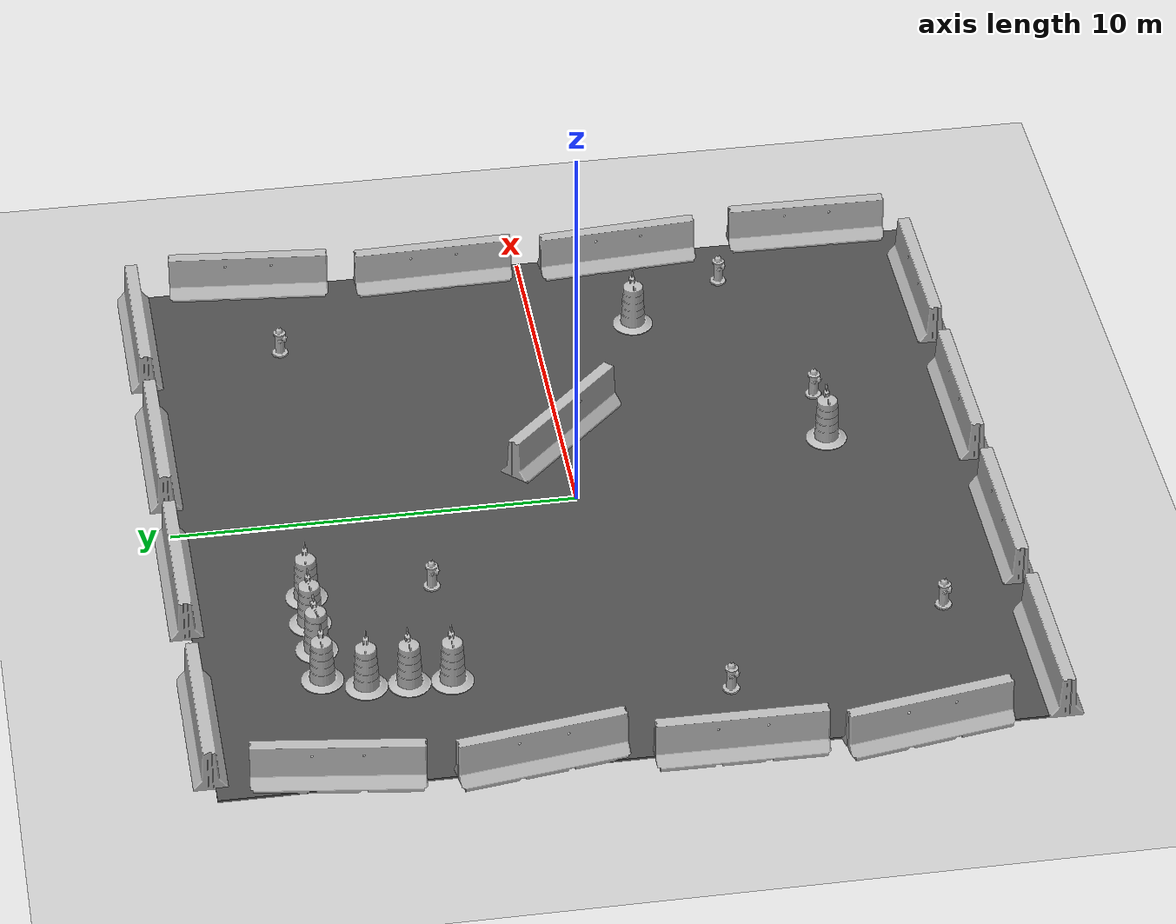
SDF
<sdf version="1.6">
 <world name="default">
  <light name="sun" type="directional">
   <pose>0 0 10 0 -0 0</pose>
   <diffuse>0.8 0.8 0.8 1</diffuse>
   <specular>0.2 0.2 0.2 1</specular>
   <attenuation>
    <range>1000</range>
    <constant>0.9</constant>
    <linear>0.01</linear>
    <quadratic>0.001</quadratic>
   </attenuation>
   <direction>-0.5 0.1 -0.9</direction>
  </light>
  <model name="ground_plane">
   <static>1</static>
   <link name="link">
    <collision name="collision">
     <geometry><plane><normal>0 0 1</normal><size>100 100</size></plane></geometry>
     <surface><friction><ode><mu>100</mu><mu2>50</mu2></ode></friction></surface>
    </collision>
    <visual name="visual">
     <cast_shadows>0</cast_shadows>
     <geometry><plane><normal>0 0 1</normal><size>100 100</size></plane></geometry>
     <material>
      <script><uri>file://media/materials/scripts/gazebo.material</uri><name>Gazebo/Grey</name></script>
     </material>
    </visual>
    <velocity_decay><linear>0</linear><angular>0</angular></velocity_decay>
   </link>
  </model>
  <physics type="ode">
   <max_step_size>0.01</max_step_size>
   <real_time_factor>1</real_time_factor>
   <real_time_update_rate>100</real_time_update_rate>
   <gravity>0 0 -9.8</gravity>
  </physics>
  <scene><ambient>0.4 0.4 0.4 1</ambient><background>0.7 0.7 0.7 1</background><shadows>1</shadows></scene>
  <model name="jersey_barrier">
   <static>1</static>
   <link name="link">
    <visual name="visual">
     <geometry>
      <mesh><uri>model://jersey_barrier/meshes/jersey_barrier.dae</uri><scale>1 1 1</scale></mesh>
     </geometry>
    </visual>
    <collision name="upright">
     <pose>0 0 0.5715 0 -0 0</pose>
     <geometry><box><size>4.06542 0.3063 1.143</size></box></geometry>
    </collision>
    <collision name="base">
     <pose>0 0 0.032258 0 -0 0</pose>
     <geometry><box><size>4.06542 0.8107 0.064516</size></box></geometry>
    </collision>
    <collision name="base2">
     <pose>0 0 0.1 0 -0 0</pose>
     <geometry><box><size>4.06542 0.65 0.1</size></box></geometry>
    </collision>
    <collision name="base3">
     <pose>0 0 0.2 0 -0 0</pose>
     <geometry><box><size>4.06542 0.5 0.1</size></box></geometry>
    </collision>
    <collision name="left-angle">
     <pose>0 -0.224 0.2401 0.9 -0 0</pose>
     <geometry><box><size>4.06542 0.5 0.064516</size></box></geometry>
    </collision>
    <collision name="right-angle">
     <pose>0 0.224 0.2401 -0.9 0 0</pose>
     <geometry><box><size>4.06542 0.5 0.064516</size></box></geometry>
    </collision>
    <velocity_decay><linear>0</linear><angular>0</angular></velocity_decay>
   </link>
   <pose>-8 -10 0 0 -0 0</pose>
  </model>
  <model name="jersey_barrier_0">
   <static>1</static>
   <link name="link">
    <visual name="visual">
     <geometry>
      <mesh><uri>model://jersey_barrier/meshes/jersey_barrier.dae</uri><scale>1 1 1</scale></mesh>
     </geometry>
    </visual>
    <collision name="upright">
     <pose>0 0 0.5715 0 -0 0</pose>
     <geometry><box><size>4.06542 0.3063 1.143</size></box></geometry>
    </collision>
    <collision name="base">
     <pose>0 0 0.032258 0 -0 0</pose>
     <geometry><box><size>4.06542 0.8107 0.064516</size></box></geometry>
    </collision>
    <collision name="base2">
     <pose>0 0 0.1 0 -0 0</pose>
     <geometry><box><size>4.06542 0.65 0.1</size></box></geometry>
    </collision>
    <collision name="base3">
     <pose>0 0 0.2 0 -0 0</pose>
     <geometry><box><size>4.06542 0.5 0.1</size></box></geometry>
    </collision>
    <collision name="left-angle">
     <pose>0 -0.224 0.2401 0.9 -0 0</pose>
     <geometry><box><size>4.06542 0.5 0.064516</size></box></geometry>
    </collision>
    <collision name="right-angle">
     <pose>0 0.224 0.2401 -0.9 0 0</pose>
     <geometry><box><size>4.06542 0.5 0.064516</size></box></geometry>
    </collision>
    <velocity_decay><linear>0</linear><angular>0</angular></velocity_decay>
   </link>
   <pose>-3 -10 0 0 -0 0</pose>
  </model>
  <model name="jersey_barrier_1">
   <static>1</static>
   <link name="link">
    <visual name="visual">
     <geometry>
      <mesh><uri>model://jersey_barrier/meshes/jersey_barrier.dae</uri><scale>1 1 1</scale></mesh>
     </geometry>
    </visual>
    <collision name="upright">
     <pose>0 0 0.5715 0 -0 0</pose>
     <geometry><box><size>4.06542 0.3063 1.143</size></box></geometry>
    </collision>
    <collision name="base">
     <pose>0 0 0.032258 0 -0 0</pose>
     <geometry><box><size>4.06542 0.8107 0.064516</size></box></geometry>
    </collision>
    <collision name="base2">
     <pose>0 0 0.1 0 -0 0</pose>
     <geometry><box><size>4.06542 0.65 0.1</size></box></geometry>
    </collision>
    <collision name="base3">
     <pose>0 0 0.2 0 -0 0</pose>
     <geometry><box><size>4.06542 0.5 0.1</size></box></geometry>
    </collision>
    <collision name="left-angle">
     <pose>0 -0.224 0.2401 0.9 -0 0</pose>
     <geometry><box><size>4.06542 0.5 0.064516</size></box></geometry>
    </collision>
    <collision name="right-angle">
     <pose>0 0.224 0.2401 -0.9 0 0</pose>
     <geometry><box><size>4.06542 0.5 0.064516</size></box></geometry>
    </collision>
    <velocity_decay><linear>0</linear><angular>0</angular></velocity_decay>
   </link>
   <pose>2 -10 0 0 -0 0</pose>
  </model>
  <model name="jersey_barrier_2">
   <static>1</static>
   <link name="link">
    <visual name="visual">
     <geometry>
      <mesh><uri>model://jersey_barrier/meshes/jersey_barrier.dae</uri><scale>1 1 1</scale></mesh>
     </geometry>
    </visual>
    <collision name="upright">
     <pose>0 0 0.5715 0 -0 0</pose>
     <geometry><box><size>4.06542 0.3063 1.143</size></box></geometry>
    </collision>
    <collision name="base">
     <pose>0 0 0.032258 0 -0 0</pose>
     <geometry><box><size>4.06542 0.8107 0.064516</size></box></geometry>
    </collision>
    <collision name="base2">
     <pose>0 0 0.1 0 -0 0</pose>
     <geometry><box><size>4.06542 0.65 0.1</size></box></geometry>
    </collision>
    <collision name="base3">
     <pose>0 0 0.2 0 -0 0</pose>
     <geometry><box><size>4.06542 0.5 0.1</size></box></geometry>
    </collision>
    <collision name="left-angle">
     <pose>0 -0.224 0.2401 0.9 -0 0</pose>
     <geometry><box><size>4.06542 0.5 0.064516</size></box></geometry>
    </collision>
    <collision name="right-angle">
     <pose>0 0.224 0.2401 -0.9 0 0</pose>
     <geometry><box><size>4.06542 0.5 0.064516</size></box></geometry>
    </collision>
    <velocity_decay><linear>0</linear><angular>0</angular></velocity_decay>
   </link>
   <pose>7 -10 0 0 -0 0</pose>
  </model>
  <model name="jersey_barrier_3">
   <static>1</static>
   <link name="link">
    <visual name="visual">
     <geometry>
      <mesh><uri>model://jersey_barrier/meshes/jersey_barrier.dae</uri><scale>1 1 1</scale></mesh>
     </geometry>
    </visual>
    <collision name="upright">
     <pose>0 0 0.5715 0 -0 0</pose>
     <geometry><box><size>4.06542 0.3063 1.143</size></box></geometry>
    </collision>
    <collision name="base">
     <pose>0 0 0.032258 0 -0 0</pose>
     <geometry><box><size>4.06542 0.8107 0.064516</size></box></geometry>
    </collision>
    <collision name="base2">
     <pose>0 0 0.1 0 -0 0</pose>
     <geometry><box><size>4.06542 0.65 0.1</size></box></geometry>
    </collision>
    <collision name="base3">
     <pose>0 0 0.2 0 -0 0</pose>
     <geometry><box><size>4.06542 0.5 0.1</size></box></geometry>
    </collision>
    <collision name="left-angle">
     <pose>0 -0.224 0.2401 0.9 -0 0</pose>
     <geometry><box><size>4.06542 0.5 0.064516</size></box></geometry>
    </collision>
    <collision name="right-angle">
     <pose>0 0.224 0.2401 -0.9 0 0</pose>
     <geometry><box><size>4.06542 0.5 0.064516</size></box></geometry>
    </collision>
    <velocity_decay><linear>0</linear><angular>0</angular></velocity_decay>
   </link>
   <pose>-7.50675 10 0 0 -0 0</pose>
  </model>
  <model name="jersey_barrier_4">
   <static>1</static>
   <link name="link">
    <visual name="visual">
     <geometry>
      <mesh><uri>model://jersey_barrier/meshes/jersey_barrier.dae</uri><scale>1 1 1</scale></mesh>
     </geometry>
    </visual>
    <collision name="upright">
     <pose>0 0 0.5715 0 -0 0</pose>
     <geometry><box><size>4.06542 0.3063 1.143</size></box></geometry>
    </collision>
    <collision name="base">
     <pose>0 0 0.032258 0 -0 0</pose>
     <geometry><box><size>4.06542 0.8107 0.064516</size></box></geometry>
    </collision>
    <collision name="base2">
     <pose>0 0 0.1 0 -0 0</pose>
     <geometry><box><size>4.06542 0.65 0.1</size></box></geometry>
    </collision>
    <collision name="base3">
     <pose>0 0 0.2 0 -0 0</pose>
     <geometry><box><size>4.06542 0.5 0.1</size></box></geometry>
    </collision>
    <collision name="left-angle">
     <pose>0 -0.224 0.2401 0.9 -0 0</pose>
     <geometry><box><size>4.06542 0.5 0.064516</size></box></geometry>
    </collision>
    <collision name="right-angle">
     <pose>0 0.224 0.2401 -0.9 0 0</pose>
     <geometry><box><size>4.06542 0.5 0.064516</size></box></geometry>
    </collision>
    <velocity_decay><linear>0</linear><angular>0</angular></velocity_decay>
   </link>
   <pose>-2 10 0 0 -0 0</pose>
  </model>
  <model name="jersey_barrier_5">
   <static>1</static>
   <link name="link">
    <visual name="visual">
     <geometry>
      <mesh><uri>model://jersey_barrier/meshes/jersey_barrier.dae</uri><scale>1 1 1</scale></mesh>
     </geometry>
    </visual>
    <collision name="upright">
     <pose>0 0 0.5715 0 -0 0</pose>
     <geometry><box><size>4.06542 0.3063 1.143</size></box></geometry>
    </collision>
    <collision name="base">
     <pose>0 0 0.032258 0 -0 0</pose>
     <geometry><box><size>4.06542 0.8107 0.064516</size></box></geometry>
    </collision>
    <collision name="base2">
     <pose>0 0 0.1 0 -0 0</pose>
     <geometry><box><size>4.06542 0.65 0.1</size></box></geometry>
    </collision>
    <collision name="base3">
     <pose>0 0 0.2 0 -0 0</pose>
     <geometry><box><size>4.06542 0.5 0.1</size></box></geometry>
    </collision>
    <collision name="left-angle">
     <pose>0 -0.224 0.2401 0.9 -0 0</pose>
     <geometry><box><size>4.06542 0.5 0.064516</size></box></geometry>
    </collision>
    <collision name="right-angle">
     <pose>0 0.224 0.2401 -0.9 0 0</pose>
     <geometry><box><size>4.06542 0.5 0.064516</size></box></geometry>
    </collision>
    <velocity_decay><linear>0</linear><angular>0</angular></velocity_decay>
   </link>
   <pose>3 10 0 0 -0 0</pose>
  </model>
  <model name="jersey_barrier_6">
   <static>1</static>
   <link name="link">
    <visual name="visual">
     <geometry>
      <mesh><uri>model://jersey_barrier/meshes/jersey_barrier.dae</uri><scale>1 1 1</scale></mesh>
     </geometry>
    </visual>
    <collision name="upright">
     <pose>0 0 0.5715 0 -0 0</pose>
     <geometry><box><size>4.06542 0.3063 1.143</size></box></geometry>
    </collision>
    <collision name="base">
     <pose>0 0 0.032258 0 -0 0</pose>
     <geometry><box><size>4.06542 0.8107 0.064516</size></box></geometry>
    </collision>
    <collision name="base2">
     <pose>0 0 0.1 0 -0 0</pose>
     <geometry><box><size>4.06542 0.65 0.1</size></box></geometry>
    </collision>
    <collision name="base3">
     <pose>0 0 0.2 0 -0 0</pose>
     <geometry><box><size>4.06542 0.5 0.1</size></box></geometry>
    </collision>
    <collision name="left-angle">
     <pose>0 -0.224 0.2401 0.9 -0 0</pose>
     <geometry><box><size>4.06542 0.5 0.064516</size></box></geometry>
    </collision>
    <collision name="right-angle">
     <pose>0 0.224 0.2401 -0.9 0 0</pose>
     <geometry><box><size>4.06542 0.5 0.064516</size></box></geometry>
    </collision>
    <velocity_decay><linear>0</linear><angular>0</angular></velocity_decay>
   </link>
   <pose>8 10 0 0 -0 0</pose>
  </model>
  <model name="jersey_barrier_7">
   <static>1</static>
   <link name="link">
    <visual name="visual">
     <geometry>
      <mesh><uri>model://jersey_barrier/meshes/jersey_barrier.dae</uri><scale>1 1 1</scale></mesh>
     </geometry>
    </visual>
    <collision name="upright">
     <pose>0 0 0.5715 0 -0 0</pose>
     <geometry><box><size>4.06542 0.3063 1.143</size></box></geometry>
    </collision>
    <collision name="base">
     <pose>0 0 0.032258 0 -0 0</pose>
     <geometry><box><size>4.06542 0.8107 0.064516</size></box></geometry>
    </collision>
    <collision name="base2">
     <pose>0 0 0.1 0 -0 0</pose>
     <geometry><box><size>4.06542 0.65 0.1</size></box></geometry>
    </collision>
    <collision name="base3">
     <pose>0 0 0.2 0 -0 0</pose>
     <geometry><box><size>4.06542 0.5 0.1</size></box></geometry>
    </collision>
    <collision name="left-angle">
     <pose>0 -0.224 0.2401 0.9 -0 0</pose>
     <geometry><box><size>4.06542 0.5 0.064516</size></box></geometry>
    </collision>
    <collision name="right-angle">
     <pose>0 0.224 0.2401 -0.9 0 0</pose>
     <geometry><box><size>4.06542 0.5 0.064516</size></box></geometry>
    </collision>
    <velocity_decay><linear>0</linear><angular>0</angular></velocity_decay>
   </link>
   <pose>9.74902 -2.57759 0 0 -0 1.64</pose>
  </model>
  <model name="jersey_barrier_8">
   <static>1</static>
   <link name="link">
    <visual name="visual">
     <geometry>
      <mesh><uri>model://jersey_barrier/meshes/jersey_barrier.dae</uri><scale>1 1 1</scale></mesh>
     </geometry>
    </visual>
    <collision name="upright">
     <pose>0 0 0.5715 0 -0 0</pose>
     <geometry><box><size>4.06542 0.3063 1.143</size></box></geometry>
    </collision>
    <collision name="base">
     <pose>0 0 0.032258 0 -0 0</pose>
     <geometry><box><size>4.06542 0.8107 0.064516</size></box></geometry>
    </collision>
    <collision name="base2">
     <pose>0 0 0.1 0 -0 0</pose>
     <geometry><box><size>4.06542 0.65 0.1</size></box></geometry>
    </collision>
    <collision name="base3">
     <pose>0 0 0.2 0 -0 0</pose>
     <geometry><box><size>4.06542 0.5 0.1</size></box></geometry>
    </collision>
    <collision name="left-angle">
     <pose>0 -0.224 0.2401 0.9 -0 0</pose>
     <geometry><box><size>4.06542 0.5 0.064516</size></box></geometry>
    </collision>
    <collision name="right-angle">
     <pose>0 0.224 0.2401 -0.9 0 0</pose>
     <geometry><box><size>4.06542 0.5 0.064516</size></box></geometry>
    </collision>
    <velocity_decay><linear>0</linear><angular>0</angular></velocity_decay>
   </link>
   <pose>9.70141 2.24369 0 0 -0 1.6</pose>
  </model>
  <model name="jersey_barrier_9">
   <static>1</static>
   <link name="link">
    <visual name="visual">
     <geometry>
      <mesh><uri>model://jersey_barrier/meshes/jersey_barrier.dae</uri><scale>1 1 1</scale></mesh>
     </geometry>
    </visual>
    <collision name="upright">
     <pose>0 0 0.5715 0 -0 0</pose>
     <geometry><box><size>4.06542 0.3063 1.143</size></box></geometry>
    </collision>
    <collision name="base">
     <pose>0 0 0.032258 0 -0 0</pose>
     <geometry><box><size>4.06542 0.8107 0.064516</size></box></geometry>
    </collision>
    <collision name="base2">
     <pose>0 0 0.1 0 -0 0</pose>
     <geometry><box><size>4.06542 0.65 0.1</size></box></geometry>
    </collision>
    <collision name="base3">
     <pose>0 0 0.2 0 -0 0</pose>
     <geometry><box><size>4.06542 0.5 0.1</size></box></geometry>
    </collision>
    <collision name="left-angle">
     <pose>0 -0.224 0.2401 0.9 -0 0</pose>
     <geometry><box><size>4.06542 0.5 0.064516</size></box></geometry>
    </collision>
    <collision name="right-angle">
     <pose>0 0.224 0.2401 -0.9 0 0</pose>
     <geometry><box><size>4.06542 0.5 0.064516</size></box></geometry>
    </collision>
    <velocity_decay><linear>0</linear><angular>0</angular></velocity_decay>
   </link>
   <pose>-10.0607 -6.69856 0 0 0 -1.4</pose>
  </model>
  <model name="jersey_barrier_10">
   <static>1</static>
   <link name="link">
    <visual name="visual">
     <geometry>
      <mesh><uri>model://jersey_barrier/meshes/jersey_barrier.dae</uri><scale>1 1 1</scale></mesh>
     </geometry>
    </visual>
    <collision name="upright">
     <pose>0 0 0.5715 0 -0 0</pose>
     <geometry><box><size>4.06542 0.3063 1.143</size></box></geometry>
    </collision>
    <collision name="base">
     <pose>0 0 0.032258 0 -0 0</pose>
     <geometry><box><size>4.06542 0.8107 0.064516</size></box></geometry>
    </collision>
    <collision name="base2">
     <pose>0 0 0.1 0 -0 0</pose>
     <geometry><box><size>4.06542 0.65 0.1</size></box></geometry>
    </collision>
    <collision name="base3">
     <pose>0 0 0.2 0 -0 0</pose>
     <geometry><box><size>4.06542 0.5 0.1</size></box></geometry>
    </collision>
    <collision name="left-angle">
     <pose>0 -0.224 0.2401 0.9 -0 0</pose>
     <geometry><box><size>4.06542 0.5 0.064516</size></box></geometry>
    </collision>
    <collision name="right-angle">
     <pose>0 0.224 0.2401 -0.9 0 0</pose>
     <geometry><box><size>4.06542 0.5 0.064516</size></box></geometry>
    </collision>
    <velocity_decay><linear>0</linear><angular>0</angular></velocity_decay>
   </link>
   <pose>-10.0774 -2.27159 0 0 -0 1.56</pose>
  </model>
  <model name="jersey_barrier_11">
   <static>1</static>
   <link name="link">
    <visual name="visual">
     <geometry>
      <mesh><uri>model://jersey_barrier/meshes/jersey_barrier.dae</uri><scale>1 1 1</scale></mesh>
     </geometry>
    </visual>
    <collision name="upright">
     <pose>0 0 0.5715 0 -0 0</pose>
     <geometry><box><size>4.06542 0.3063 1.143</size></box></geometry>
    </collision>
    <collision name="base">
     <pose>0 0 0.032258 0 -0 0</pose>
     <geometry><box><size>4.06542 0.8107 0.064516</size></box></geometry>
    </collision>
    <collision name="base2">
     <pose>0 0 0.1 0 -0 0</pose>
     <geometry><box><size>4.06542 0.65 0.1</size></box></geometry>
    </collision>
    <collision name="base3">
     <pose>0 0 0.2 0 -0 0</pose>
     <geometry><box><size>4.06542 0.5 0.1</size></box></geometry>
    </collision>
    <collision name="left-angle">
     <pose>0 -0.224 0.2401 0.9 -0 0</pose>
     <geometry><box><size>4.06542 0.5 0.064516</size></box></geometry>
    </collision>
    <collision name="right-angle">
     <pose>0 0.224 0.2401 -0.9 0 0</pose>
     <geometry><box><size>4.06542 0.5 0.064516</size></box></geometry>
    </collision>
    <velocity_decay><linear>0</linear><angular>0</angular></velocity_decay>
   </link>
   <pose>-9.77013 2.34791 0 0 -0 1.72</pose>
  </model>
  <model name="jersey_barrier_12">
   <static>1</static>
   <link name="link">
    <visual name="visual">
     <geometry>
      <mesh><uri>model://jersey_barrier/meshes/jersey_barrier.dae</uri><scale>1 1 1</scale></mesh>
     </geometry>
    </visual>
    <collision name="upright">
     <pose>0 0 0.5715 0 -0 0</pose>
     <geometry><box><size>4.06542 0.3063 1.143</size></box></geometry>
    </collision>
    <collision name="base">
     <pose>0 0 0.032258 0 -0 0</pose>
     <geometry><box><size>4.06542 0.8107 0.064516</size></box></geometry>
    </collision>
    <collision name="base2">
     <pose>0 0 0.1 0 -0 0</pose>
     <geometry><box><size>4.06542 0.65 0.1</size></box></geometry>
    </collision>
    <collision name="base3">
     <pose>0 0 0.2 0 -0 0</pose>
     <geometry><box><size>4.06542 0.5 0.1</size></box></geometry>
    </collision>
    <collision name="left-angle">
     <pose>0 -0.224 0.2401 0.9 -0 0</pose>
     <geometry><box><size>4.06542 0.5 0.064516</size></box></geometry>
    </collision>
    <collision name="right-angle">
     <pose>0 0.224 0.2401 -0.9 0 0</pose>
     <geometry><box><size>4.06542 0.5 0.064516</size></box></geometry>
    </collision>
    <velocity_decay><linear>0</linear><angular>0</angular></velocity_decay>
   </link>
   <pose>10.0879 -7.62159 0 0 -0 1.56</pose>
  </model>
  <model name="jersey_barrier_13">
   <static>1</static>
   <link name="link">
    <visual name="visual">
     <geometry>
      <mesh><uri>model://jersey_barrier/meshes/jersey_barrier.dae</uri><scale>1 1 1</scale></mesh>
     </geometry>
    </visual>
    <collision name="upright">
     <pose>0 0 0.5715 0 -0 0</pose>
     <geometry><box><size>4.06542 0.3063 1.143</size></box></geometry>
    </collision>
    <collision name="base">
     <pose>0 0 0.032258 0 -0 0</pose>
     <geometry><box><size>4.06542 0.8107 0.064516</size></box></geometry>
    </collision>
    <collision name="base2">
     <pose>0 0 0.1 0 -0 0</pose>
     <geometry><box><size>4.06542 0.65 0.1</size></box></geometry>
    </collision>
    <collision name="base3">
     <pose>0 0 0.2 0 -0 0</pose>
     <geometry><box><size>4.06542 0.5 0.1</size></box></geometry>
    </collision>
    <collision name="left-angle">
     <pose>0 -0.224 0.2401 0.9 -0 0</pose>
     <geometry><box><size>4.06542 0.5 0.064516</size></box></geometry>
    </collision>
    <collision name="right-angle">
     <pose>0 0.224 0.2401 -0.9 0 0</pose>
     <geometry><box><size>4.06542 0.5 0.064516</size></box></geometry>
    </collision>
    <velocity_decay><linear>0</linear><angular>0</angular></velocity_decay>
   </link>
   <pose>10 7 0 0 -0 1.48</pose>
  </model>
  <model name="jersey_barrier_14">
   <static>1</static>
   <link name="link">
    <visual name="visual">
     <geometry>
      <mesh><uri>model://jersey_barrier/meshes/jersey_barrier.dae</uri><scale>1 1 1</scale></mesh>
     </geometry>
    </visual>
    <collision name="upright">
     <pose>0 0 0.5715 0 -0 0</pose>
     <geometry><box><size>4.06542 0.3063 1.143</size></box></geometry>
    </collision>
    <collision name="base">
     <pose>0 0 0.032258 0 -0 0</pose>
     <geometry><box><size>4.06542 0.8107 0.064516</size></box></geometry>
    </collision>
    <collision name="base2">
     <pose>0 0 0.1 0 -0 0</pose>
     <geometry><box><size>4.06542 0.65 0.1</size></box></geometry>
    </collision>
    <collision name="base3">
     <pose>0 0 0.2 0 -0 0</pose>
     <geometry><box><size>4.06542 0.5 0.1</size></box></geometry>
    </collision>
    <collision name="left-angle">
     <pose>0 -0.224 0.2401 0.9 -0 0</pose>
     <geometry><box><size>4.06542 0.5 0.064516</size></box></geometry>
    </collision>
    <collision name="right-angle">
     <pose>0 0.224 0.2401 -0.9 0 0</pose>
     <geometry><box><size>4.06542 0.5 0.064516</size></box></geometry>
    </collision>
    <velocity_decay><linear>0</linear><angular>0</angular></velocity_decay>
   </link>
   <pose>-9.64482 7.05946 0 0 -0 1.44</pose>
  </model>
  <model name="fire_hydrant">
   <static>1</static>
   <link name="link">
    <collision name="collision">
     <geometry><mesh><uri>model://fire_hydrant/meshes/fire_hydrant.dae</uri><scale>1 1 1</scale></mesh></geometry>
    </collision>
    <visual name="visual">
     <geometry><mesh><uri>model://fire_hydrant/meshes/fire_hydrant.dae</uri><scale>1 1 1</scale></mesh></geometry>
    </visual>
    <velocity_decay><linear>0</linear><angular>0</angular></velocity_decay>
   </link>
   <pose>3.18024 -6.51118 0 0 -0 0</pose>
  </model>
  <model name="fire_hydrant_0">
   <static>1</static>
   <link name="link">
    <collision name="collision">
     <geometry><mesh><uri>model://fire_hydrant/meshes/fire_hydrant.dae</uri><scale>1 1 1</scale></mesh></geometry>
    </collision>
    <visual name="visual">
     <geometry><mesh><uri>model://fire_hydrant/meshes/fire_hydrant.dae</uri><scale>1 1 1</scale></mesh></geometry>
    </visual>
    <velocity_decay><linear>0</linear><angular>0</angular></velocity_decay>
   </link>
   <pose>-3 4 0 0 -0 0</pose>
  </model>
  <model name="fire_hydrant_1">
   <static>1</static>
   <link name="link">
    <collision name="collision">
     <geometry><mesh><uri>model://fire_hydrant/meshes/fire_hydrant.dae</uri><scale>1 1 1</scale></mesh></geometry>
    </collision>
    <visual name="visual">
     <geometry><mesh><uri>model://fire_hydrant/meshes/fire_hydrant.dae</uri><scale>1 1 1</scale></mesh></geometry>
    </visual>
    <velocity_decay><linear>0</linear><angular>0</angular></velocity_decay>
   </link>
   <pose>-7.90686 -2.41363 0 0 -0 0</pose>
  </model>
  <model name="jersey_barrier_15">
   <static>1</static>
   <link name="link">
    <visual name="visual">
     <geometry>
      <mesh><uri>model://jersey_barrier/meshes/jersey_barrier.dae</uri><scale>1 1 1</scale></mesh>
     </geometry>
    </visual>
    <collision name="upright">
     <pose>0 0 0.5715 0 -0 0</pose>
     <geometry><box><size>4.06542 0.3063 1.143</size></box></geometry>
    </collision>
    <collision name="base">
     <pose>0 0 0.032258 0 -0 0</pose>
     <geometry><box><size>4.06542 0.8107 0.064516</size></box></geometry>
    </collision>
    <collision name="base2">
     <pose>0 0 0.1 0 -0 0</pose>
     <geometry><box><size>4.06542 0.65 0.1</size></box></geometry>
    </collision>
    <collision name="base3">
     <pose>0 0 0.2 0 -0 0</pose>
     <geometry><box><size>4.06542 0.5 0.1</size></box></geometry>
    </collision>
    <collision name="left-angle">
     <pose>0 -0.224 0.2401 0.9 -0 0</pose>
     <geometry><box><size>4.06542 0.5 0.064516</size></box></geometry>
    </collision>
    <collision name="right-angle">
     <pose>0 0.224 0.2401 -0.9 0 0</pose>
     <geometry><box><size>4.06542 0.5 0.064516</size></box></geometry>
    </collision>
    <velocity_decay><linear>0</linear><angular>0</angular></velocity_decay>
   </link>
   <pose>2.45495 0 0 0 -0 2.36</pose>
  </model>
  <model name="Construction Barrel">
   <link name="link">
    <inertial>
     <pose>0 0 0.4 0 -0 0</pose>
     <mass>500</mass>
     <inertia><ixx>51.2096</ixx><iyy>51.2096</iyy><izz>25</izz><ixy>0</ixy><ixz>0</ixz><iyz>0</iyz></inertia>
    </inertial>
    <collision name="collision">
     <geometry>
      <mesh><uri>model://construction_barrel/meshes/construction_barrel.dae</uri><scale>1 1 1</scale></mesh>
     </geometry>
    </collision>
    <visual name="visual">
     <geometry>
      <mesh><uri>model://construction_barrel/meshes/construction_barrel.dae</uri><scale>1 1 1</scale></mesh>
     </geometry>
    </visual>
    <velocity_decay><linear>0</linear><angular>0</angular></velocity_decay>
   </link>
   <pose>7.00007 -2.54634 0.029894 0.000442 -1.6e-05 0.000382</pose>
   <static>0</static>
  </model>
  <model name="Construction Barrel_0">
   <link name="link">
    <inertial>
     <pose>0 0 0.4 0 -0 0</pose>
     <mass>500</mass>
     <inertia><ixx>51.2096</ixx><iyy>51.2096</iyy><izz>25</izz><ixy>0</ixy><ixz>0</ixz><iyz>0</iyz></inertia>
    </inertial>
    <collision name="collision">
     <geometry>
      <mesh><uri>model://construction_barrel/meshes/construction_barrel.dae</uri><scale>1 1 1</scale></mesh>
     </geometry>
    </collision>
    <visual name="visual">
     <geometry>
      <mesh><uri>model://construction_barrel/meshes/construction_barrel.dae</uri><scale>1 1 1</scale></mesh>
     </geometry>
    </visual>
    <velocity_decay><linear>0</linear><angular>0</angular></velocity_decay>
   </link>
   <pose>1.45176 -6.51125 0.029913 -0.000171 -0.000348 1e-06</pose>
   <static>0</static>
  </model>
  <model name="asphalt_plane">
   <static>1</static>
   <link name="link">
    <collision name="collision"><geometry><box><size>20 20 0.1</size></box></geometry></collision>
    <visual name="visual">
     <cast_shadows>0</cast_shadows>
     <geometry><box><size>20 20 0.1</size></box></geometry>
     <material>
      <script>
       <uri>model://asphalt_plane/materials/scripts</uri>
       <uri>model://asphalt_plane/materials/textures</uri>
       <name>vrc/asphalt</name>
      </script>
     </material>
    </visual>
    <velocity_decay><linear>0</linear><angular>0</angular></velocity_decay>
   </link>
   <pose>0.076733 -0.110379 -0.02 0 -0 0</pose>
  </model>
  <model name="Construction Barrel_1">
   <link name="link">
    <inertial>
     <pose>0 0 0.4 0 -0 0</pose>
     <mass>500</mass>
     <inertia><ixx>51.2096</ixx><iyy>51.2096</iyy><izz>25</izz><ixy>0</ixy><ixz>0</ixz><iyz>0</iyz></inertia>
    </inertial>
    <collision name="collision">
     <geometry>
      <mesh><uri>model://construction_barrel/meshes/construction_barrel.dae</uri><scale>1 1 1</scale></mesh>
     </geometry>
    </collision>
    <visual name="visual">
     <geometry>
      <mesh><uri>model://construction_barrel/meshes/construction_barrel.dae</uri><scale>1 1 1</scale></mesh>
     </geometry>
    </visual>
    <velocity_decay><linear>0</linear><angular>0</angular></velocity_decay>
   </link>
   <pose>-6.50483 3.98262 0.029911 0.000394 -2.6e-05 -0.009768</pose>
   <static>0</static>
  </model>
  <model name="Construction Barrel_2">
   <link name="link">
    <inertial>
     <pose>0 0 0.4 0 -0 0</pose>
     <mass>500</mass>
     <inertia><ixx>51.2096</ixx><iyy>51.2096</iyy><izz>25</izz><ixy>0</ixy><ixz>0</ixz><iyz>0</iyz></inertia>
    </inertial>
    <collision name="collision">
     <geometry>
      <mesh><uri>model://construction_barrel/meshes/construction_barrel.dae</uri><scale>1 1 1</scale></mesh>
     </geometry>
    </collision>
    <visual name="visual">
     <geometry>
      <mesh><uri>model://construction_barrel/meshes/construction_barrel.dae</uri><scale>1 1 1</scale></mesh>
     </geometry>
    </visual>
    <velocity_decay><linear>0</linear><angular>0</angular></velocity_decay>
   </link>
   <pose>-6.45066 4.99642 0.029888 0.000381 0.00022 0.064929</pose>
   <static>0</static>
  </model>
  <model name="Construction Barrel_3">
   <link name="link">
    <inertial>
     <pose>0 0 0.4 0 -0 0</pose>
     <mass>500</mass>
     <inertia><ixx>51.2096</ixx><iyy>51.2096</iyy><izz>25</izz><ixy>0</ixy><ixz>0</ixz><iyz>0</iyz></inertia>
    </inertial>
    <collision name="collision">
     <geometry>
      <mesh><uri>model://construction_barrel/meshes/construction_barrel.dae</uri><scale>1 1 1</scale></mesh>
     </geometry>
    </collision>
    <visual name="visual">
     <geometry>
      <mesh><uri>model://construction_barrel/meshes/construction_barrel.dae</uri><scale>1 1 1</scale></mesh>
     </geometry>
    </visual>
    <velocity_decay><linear>0</linear><angular>0</angular></velocity_decay>
   </link>
   <pose>-6.40174 6.01109 0.029888 0 -0.000441 -0.120703</pose>
   <static>0</static>
  </model>
  <model name="Construction Barrel_4">
   <link name="link">
    <inertial>
     <pose>0 0 0.4 0 -0 0</pose>
     <mass>500</mass>
     <inertia><ixx>51.2096</ixx><iyy>51.2096</iyy><izz>25</izz><ixy>0</ixy><ixz>0</ixz><iyz>0</iyz></inertia>
    </inertial>
    <collision name="collision">
     <geometry>
      <mesh><uri>model://construction_barrel/meshes/construction_barrel.dae</uri><scale>1 1 1</scale></mesh>
     </geometry>
    </collision>
    <visual name="visual">
     <geometry>
      <mesh><uri>model://construction_barrel/meshes/construction_barrel.dae</uri><scale>1 1 1</scale></mesh>
     </geometry>
    </visual>
    <velocity_decay><linear>0</linear><angular>0</angular></velocity_decay>
   </link>
   <pose>-6.00629 7.00882 0.029913 0.000376 7.6e-05 -0.049521</pose>
   <static>0</static>
  </model>
  <model name="Construction Barrel_5">
   <link name="link">
    <inertial>
     <pose>0 0 0.4 0 -0 0</pose>
     <mass>500</mass>
     <inertia><ixx>51.2096</ixx><iyy>51.2096</iyy><izz>25</izz><ixy>0</ixy><ixz>0</ixz><iyz>0</iyz></inertia>
    </inertial>
    <collision name="collision">
     <geometry>
      <mesh><uri>model://construction_barrel/meshes/construction_barrel.dae</uri><scale>1 1 1</scale></mesh>
     </geometry>
    </collision>
    <visual name="visual">
     <geometry>
      <mesh><uri>model://construction_barrel/meshes/construction_barrel.dae</uri><scale>1 1 1</scale></mesh>
     </geometry>
    </visual>
    <velocity_decay><linear>0</linear><angular>0</angular></velocity_decay>
   </link>
   <pose>-4.87578 7.00818 0.029893 -0.000103 -0.00043 0.146197</pose>
   <static>0</static>
  </model>
  <model name="Construction Barrel_6">
   <link name="link">
    <inertial>
     <pose>0 0 0.4 0 -0 0</pose>
     <mass>500</mass>
     <inertia><ixx>51.2096</ixx><iyy>51.2096</iyy><izz>25</izz><ixy>0</ixy><ixz>0</ixz><iyz>0</iyz></inertia>
    </inertial>
    <collision name="collision">
     <geometry>
      <mesh><uri>model://construction_barrel/meshes/construction_barrel.dae</uri><scale>1 1 1</scale></mesh>
     </geometry>
    </collision>
    <visual name="visual">
     <geometry>
      <mesh><uri>model://construction_barrel/meshes/construction_barrel.dae</uri><scale>1 1 1</scale></mesh>
     </geometry>
    </visual>
    <velocity_decay><linear>0</linear><angular>0</angular></velocity_decay>
   </link>
   <pose>-3.86116 7.04547 0.029891 -0.000106 -0.000434 0.067117</pose>
   <static>0</static>
  </model>
  <model name="Construction Barrel_7">
   <link name="link">
    <inertial>
     <pose>0 0 0.4 0 -0 0</pose>
     <mass>500</mass>
     <inertia><ixx>51.2096</ixx><iyy>51.2096</iyy><izz>25</izz><ixy>0</ixy><ixz>0</ixz><iyz>0</iyz></inertia>
    </inertial>
    <collision name="collision">
     <geometry>
      <mesh><uri>model://construction_barrel/meshes/construction_barrel.dae</uri><scale>1 1 1</scale></mesh>
     </geometry>
    </collision>
    <visual name="visual">
     <geometry>
      <mesh><uri>model://construction_barrel/meshes/construction_barrel.dae</uri><scale>1 1 1</scale></mesh>
     </geometry>
    </visual>
    <velocity_decay><linear>0</linear><angular>0</angular></velocity_decay>
   </link>
   <pose>-2.84565 7.01462 0.029888 1e-06 -0.000441 -0.041192</pose>
   <static>0</static>
  </model>
  <gravity>0 0 -9.8</gravity>
  <magnetic_field>6e-06 2.3e-05 -4.2e-05</magnetic_field>
  <atmosphere type="adiabatic"/>
  <spherical_coordinates>
   <surface_model>EARTH_WGS84</surface_model>
   <latitude_deg>0</latitude_deg>
   <longitude_deg>0</longitude_deg>
   <elevation>0</elevation>
   <heading_deg>0</heading_deg>
  </spherical_coordinates>
  <model name="fire_hydrant_1_clone">
   <static>1</static>
   <link name="link">
    <collision name="collision">
     <geometry><mesh><uri>model://fire_hydrant/meshes/fire_hydrant.dae</uri><scale>1 1 1</scale></mesh></geometry>
    </collision>
    <visual name="visual">
     <geometry><mesh><uri>model://fire_hydrant/meshes/fire_hydrant.dae</uri><scale>1 1 1</scale></mesh></geometry>
    </visual>
    <velocity_decay><linear>0</linear><angular>0</angular></velocity_decay>
   </link>
   <pose>-5.59466 -7.98608 0 0 -0 0</pose>
  </model>
  <model name="fire_hydrant_clone">
   <static>1</static>
   <link name="link">
    <collision name="collision">
     <geometry><mesh><uri>model://fire_hydrant/meshes/fire_hydrant.dae</uri><scale>1 1 1</scale></mesh></geometry>
    </collision>
    <visual name="visual">
     <geometry><mesh><uri>model://fire_hydrant/meshes/fire_hydrant.dae</uri><scale>1 1 1</scale></mesh></geometry>
    </visual>
    <velocity_decay><linear>0</linear><angular>0</angular></velocity_decay>
   </link>
   <pose>8.3937 -5.00768 0 0 -0 0</pose>
  </model>
  <model name="fire_hydrant_clone_clone">
   <static>1</static>
   <link name="link">
    <collision name="collision">
     <geometry><mesh><uri>model://fire_hydrant/meshes/fire_hydrant.dae</uri><scale>1 1 1</scale></mesh></geometry>
    </collision>
    <visual name="visual">
     <geometry><mesh><uri>model://fire_hydrant/meshes/fire_hydrant.dae</uri><scale>1 1 1</scale></mesh></geometry>
    </visual>
    <velocity_decay><linear>0</linear><angular>0</angular></velocity_decay>
   </link>
   <pose>7.01313 6.52743 0 0 -0 0</pose>
  </model>
 </world>
</sdf>
